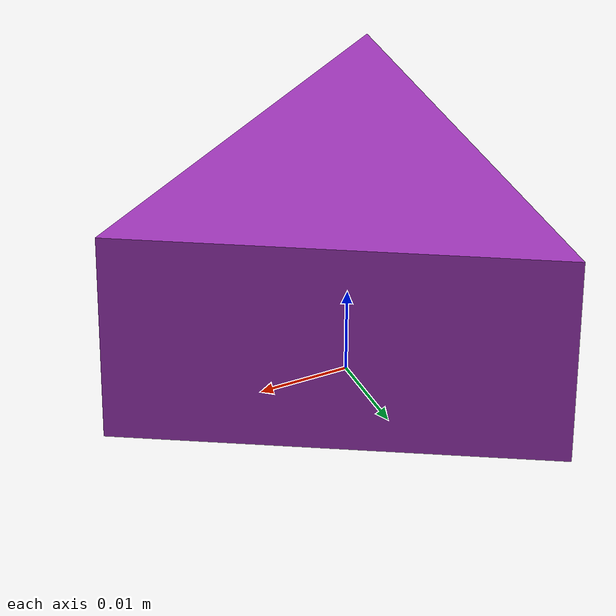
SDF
<sdf version='1.6'>
  <model name='eq_triangle'>
    <link name='eq_triangle_link'>
      <pose frame=''>0 0 0 0 -0 0</pose>
      <inertial>
        <pose frame=''>-0 -0 0.025 0 -0 0</pose>
        <mass>0.203689</mass>
        <inertia>
          <ixx>0.000122281</ixx>
          <ixy>-5.39984e-21</ixy>
          <ixz>-7.81026e-21</ixz>
          <iyy>0.000122281</iyy>
          <iyz>-1.09311e-20</iyz>
          <izz>0.000159692</izz>
        </inertia>
      </inertial>
      <collision name='eq_triangle_link_collision'>
        <pose frame=''>0 0 0 0 -0 0</pose>
        <geometry>
          <mesh>
            <scale>0.5 0.5 0.5</scale>
            <uri>model://eq_triangle/meshes/eq_triangle_link.STL</uri>
          </mesh>
        </geometry>
      </collision>
      <visual name='eq_triangle_link_visual'>
        <pose frame=''>0 0 0 0 -0 0</pose>
        <geometry>
          <mesh>
            <scale>0.5 0.5 0.5</scale>
            <uri>model://eq_triangle/meshes/eq_triangle_link.STL</uri>
          </mesh>
        </geometry>
        <material>
          <script>
            <name>Gazebo/Purple</name>
            <uri>file://media/materials/scripts/gazebo.material</uri>
          </script>
        </material>
      </visual>
    </link>
  </model>
</sdf>
